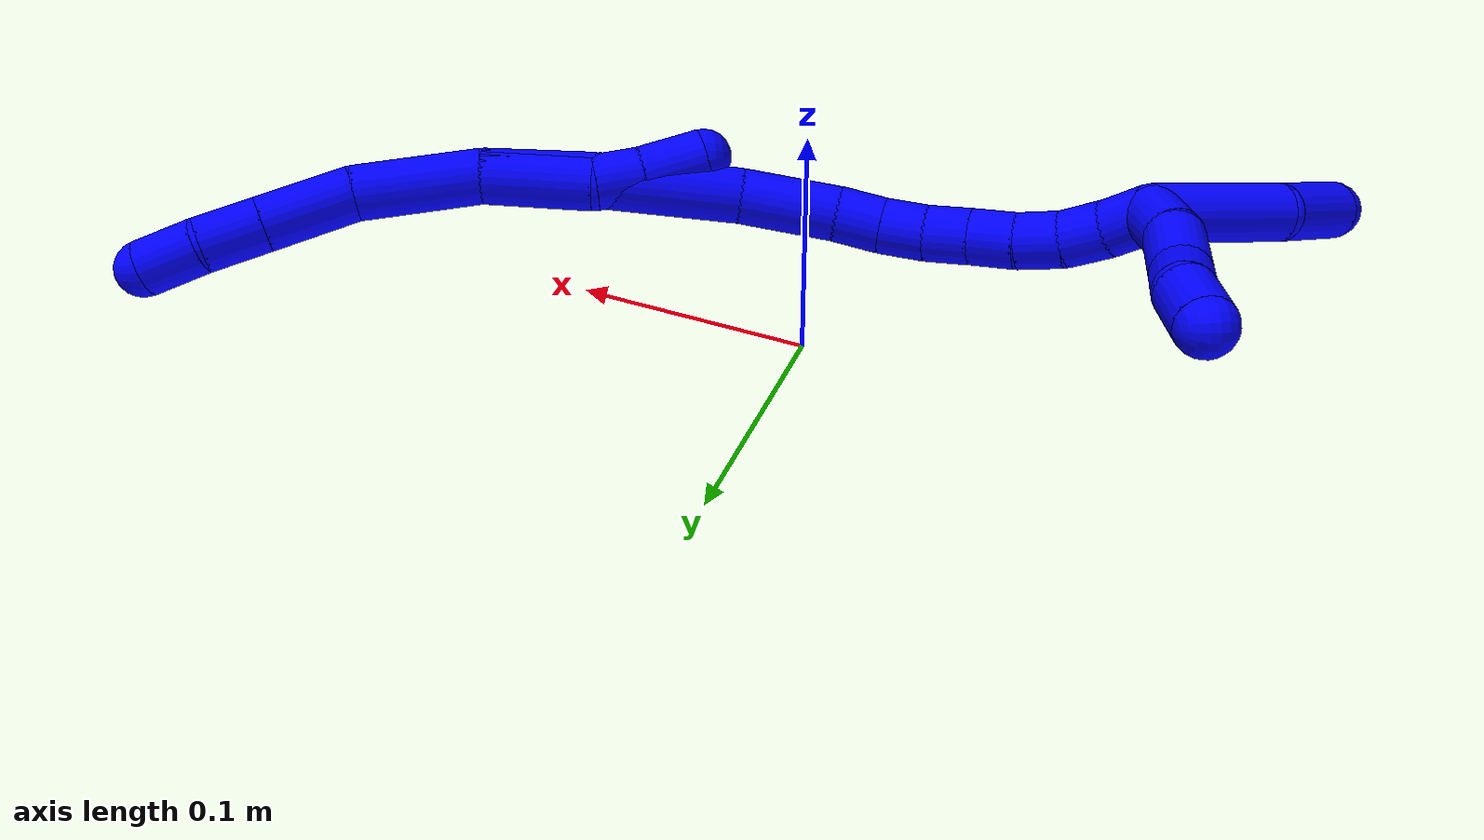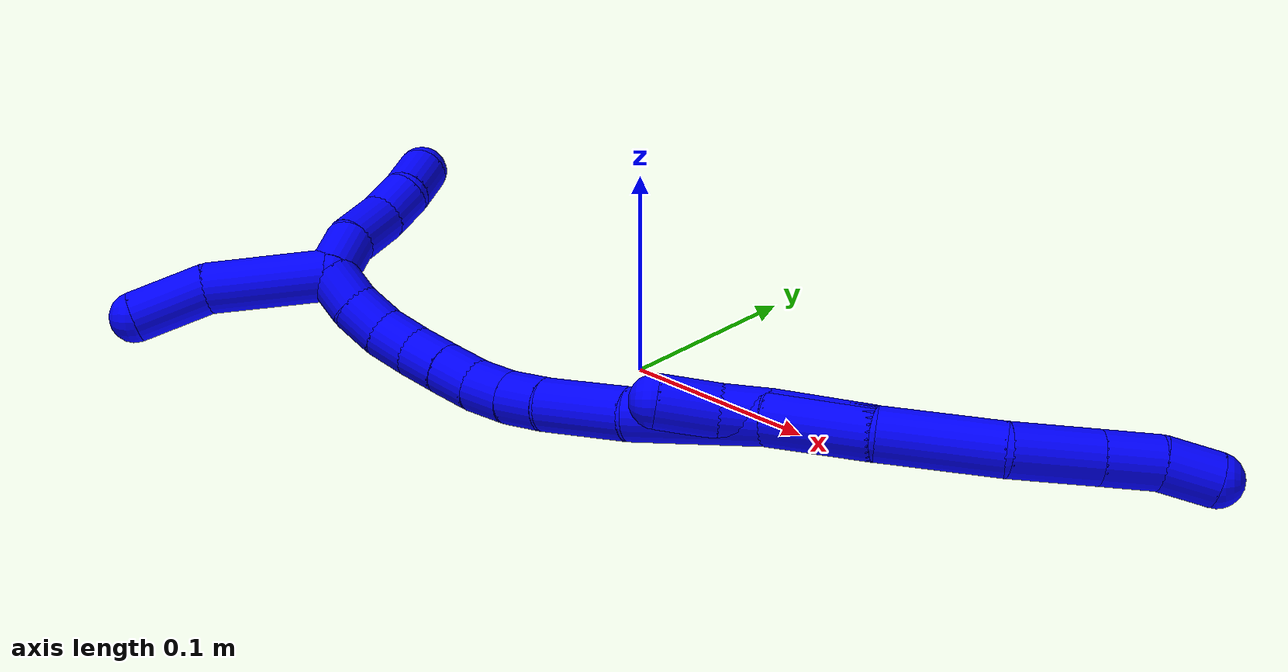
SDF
<sdf version="1.7">
 <world name="default">
  <model name="1">
   <static>0</static>
   <link name="1">
    <collision name="collision-cylinder-e_1_2_8">
     <pose>0.00115 0.002707 0.027988 -0.096409 0.040873 -0.001972</pose>
     <geometry><cylinder><radius>0.0125</radius><length>0.056284</length></cylinder></geometry>
     <surface>
      <friction><ode><mu>1.16</mu><mu2>1.16</mu2><slip1>0</slip1><slip2>0</slip2></ode></friction>
      <contact><ode><kp>1e+06</kp><kd>1</kd><max_vel>0</max_vel><min_depth>0.001</min_depth></ode></contact>
     </surface>
    </collision>
    <visual name="visual-cylinder-e_1_2_8">
     <pose>0.00115 0.002707 0.027988 -0.096409 0.040873 -0.001972</pose>
     <geometry><cylinder><radius>0.0125</radius><length>0.056284</length></cylinder></geometry>
     <material><ambient>0 0 1 1</ambient></material>
    </visual>
    <collision name="collision-cylinder-e_2_8_9">
     <pose>-0.00056 0.010839 0.075466 -0.271496 -0.140444 0.019214</pose>
     <geometry><cylinder><radius>0.0125</radius><length>0.040864</length></cylinder></geometry>
     <surface>
      <friction><ode><mu>1.16</mu><mu2>1.16</mu2><slip1>0</slip1><slip2>0</slip2></ode></friction>
      <contact><ode><kp>1e+06</kp><kd>1</kd><max_vel>0</max_vel><min_depth>0.001</min_depth></ode></contact>
     </surface>
    </collision>
    <visual name="visual-cylinder-e_2_8_9">
     <pose>-0.00056 0.010839 0.075466 -0.271496 -0.140444 0.019214</pose>
     <geometry><cylinder><radius>0.0125</radius><length>0.040864</length></cylinder></geometry>
     <material><ambient>0 0 1 1</ambient></material>
    </visual>
    <collision name="collision-cylinder-e_3_9_10">
     <pose>-0.005263 0.019835 0.107899 -0.26917 -0.136405 0.018498</pose>
     <geometry><cylinder><radius>0.0125</radius><length>0.027106</length></cylinder></geometry>
     <surface>
      <friction><ode><mu>1.16</mu><mu2>1.16</mu2><slip1>0</slip1><slip2>0</slip2></ode></friction>
      <contact><ode><kp>1e+06</kp><kd>1</kd><max_vel>0</max_vel><min_depth>0.001</min_depth></ode></contact>
     </surface>
    </collision>
    <visual name="visual-cylinder-e_3_9_10">
     <pose>-0.005263 0.019835 0.107899 -0.26917 -0.136405 0.018498</pose>
     <geometry><cylinder><radius>0.0125</radius><length>0.027106</length></cylinder></geometry>
     <material><ambient>0 0 1 1</ambient></material>
    </visual>
    <collision name="collision-cylinder-e_4_10_6">
     <pose>-0.00642 0.027875 0.132895 -0.355146 0.05336 -0.009578</pose>
     <geometry><cylinder><radius>0.0125</radius><length>0.025747</length></cylinder></geometry>
     <surface>
      <friction><ode><mu>1.16</mu><mu2>1.16</mu2><slip1>0</slip1><slip2>0</slip2></ode></friction>
      <contact><ode><kp>1e+06</kp><kd>1</kd><max_vel>0</max_vel><min_depth>0.001</min_depth></ode></contact>
     </surface>
    </collision>
    <visual name="visual-cylinder-e_4_10_6">
     <pose>-0.00642 0.027875 0.132895 -0.355146 0.05336 -0.009578</pose>
     <geometry><cylinder><radius>0.0125</radius><length>0.025747</length></cylinder></geometry>
     <material><ambient>0 0 1 1</ambient></material>
    </visual>
    <collision name="collision-cylinder-e_1_2_11">
     <pose>-0.005503 0.001901 -0.02412 -3.06292 -0.223658 2.46745</pose>
     <geometry><cylinder><radius>0.0125</radius><length>0.049626</length></cylinder></geometry>
     <surface>
      <friction><ode><mu>1.16</mu><mu2>1.16</mu2><slip1>0</slip1><slip2>0</slip2></ode></friction>
      <contact><ode><kp>1e+06</kp><kd>1</kd><max_vel>0</max_vel><min_depth>0.001</min_depth></ode></contact>
     </surface>
    </collision>
    <visual name="visual-cylinder-e_1_2_11">
     <pose>-0.005503 0.001901 -0.02412 -3.06292 -0.223658 2.46745</pose>
     <geometry><cylinder><radius>0.0125</radius><length>0.049626</length></cylinder></geometry>
     <material><ambient>0 0 1 1</ambient></material>
    </visual>
    <collision name="collision-cylinder-e_2_11_12">
     <pose>-0.010947 0.002453 -0.058951 3.01622 0.005552 0.088388</pose>
     <geometry><cylinder><radius>0.0125</radius><length>0.021591</length></cylinder></geometry>
     <surface>
      <friction><ode><mu>1.16</mu><mu2>1.16</mu2><slip1>0</slip1><slip2>0</slip2></ode></friction>
      <contact><ode><kp>1e+06</kp><kd>1</kd><max_vel>0</max_vel><min_depth>0.001</min_depth></ode></contact>
     </surface>
    </collision>
    <visual name="visual-cylinder-e_2_11_12">
     <pose>-0.010947 0.002453 -0.058951 3.01622 0.005552 0.088388</pose>
     <geometry><cylinder><radius>0.0125</radius><length>0.021591</length></cylinder></geometry>
     <material><ambient>0 0 1 1</ambient></material>
    </visual>
    <collision name="collision-cylinder-e_3_12_5">
     <pose>-0.010538 -0.002246 -0.083654 2.90664 0.024228 0.204578</pose>
     <geometry><cylinder><radius>0.0125</radius><length>0.028783</length></cylinder></geometry>
     <surface>
      <friction><ode><mu>1.16</mu><mu2>1.16</mu2><slip1>0</slip1><slip2>0</slip2></ode></friction>
      <contact><ode><kp>1e+06</kp><kd>1</kd><max_vel>0</max_vel><min_depth>0.001</min_depth></ode></contact>
     </surface>
    </collision>
    <visual name="visual-cylinder-e_3_12_5">
     <pose>-0.010538 -0.002246 -0.083654 2.90664 0.024228 0.204578</pose>
     <geometry><cylinder><radius>0.0125</radius><length>0.028783</length></cylinder></geometry>
     <material><ambient>0 0 1 1</ambient></material>
    </visual>
    <collision name="collision-cylinder-e_1_2_13">
     <pose>-0.004564 0.001459 -0.024637 -3.08245 -0.182881 2.5175</pose>
     <geometry><cylinder><radius>0.0125</radius><length>0.050196</length></cylinder></geometry>
     <surface>
      <friction><ode><mu>1.16</mu><mu2>1.16</mu2><slip1>0</slip1><slip2>0</slip2></ode></friction>
      <contact><ode><kp>1e+06</kp><kd>1</kd><max_vel>0</max_vel><min_depth>0.001</min_depth></ode></contact>
     </surface>
    </collision>
    <visual name="visual-cylinder-e_1_2_13">
     <pose>-0.004564 0.001459 -0.024637 -3.08245 -0.182881 2.5175</pose>
     <geometry><cylinder><radius>0.0125</radius><length>0.050196</length></cylinder></geometry>
     <material><ambient>0 0 1 1</ambient></material>
    </visual>
    <collision name="collision-cylinder-e_2_13_14">
     <pose>-0.012759 0.007416 -0.081214 -3.00167 -0.11207 1.35007</pose>
     <geometry><cylinder><radius>0.0125</radius><length>0.06492</length></cylinder></geometry>
     <surface>
      <friction><ode><mu>1.16</mu><mu2>1.16</mu2><slip1>0</slip1><slip2>0</slip2></ode></friction>
      <contact><ode><kp>1e+06</kp><kd>1</kd><max_vel>0</max_vel><min_depth>0.001</min_depth></ode></contact>
     </surface>
    </collision>
    <visual name="visual-cylinder-e_2_13_14">
     <pose>-0.012759 0.007416 -0.081214 -3.00167 -0.11207 1.35007</pose>
     <geometry><cylinder><radius>0.0125</radius><length>0.06492</length></cylinder></geometry>
     <material><ambient>0 0 1 1</ambient></material>
    </visual>
    <collision name="collision-cylinder-e_3_14_15">
     <pose>-0.021811 0.016135 -0.133895 -2.94087 -0.250795 1.79351</pose>
     <geometry><cylinder><radius>0.0125</radius><length>0.043696</length></cylinder></geometry>
     <surface>
      <friction><ode><mu>1.16</mu><mu2>1.16</mu2><slip1>0</slip1><slip2>0</slip2></ode></friction>
      <contact><ode><kp>1e+06</kp><kd>1</kd><max_vel>0</max_vel><min_depth>0.001</min_depth></ode></contact>
     </surface>
    </collision>
    <visual name="visual-cylinder-e_3_14_15">
     <pose>-0.021811 0.016135 -0.133895 -2.94087 -0.250795 1.79351</pose>
     <geometry><cylinder><radius>0.0125</radius><length>0.043696</length></cylinder></geometry>
     <material><ambient>0 0 1 1</ambient></material>
    </visual>
    <collision name="collision-cylinder-e_4_15_16">
     <pose>-0.03103 0.022889 -0.164049 -2.87861 -0.371333 1.91462</pose>
     <geometry><cylinder><radius>0.0125</radius><length>0.020927</length></cylinder></geometry>
     <surface>
      <friction><ode><mu>1.16</mu><mu2>1.16</mu2><slip1>0</slip1><slip2>0</slip2></ode></friction>
      <contact><ode><kp>1e+06</kp><kd>1</kd><max_vel>0</max_vel><min_depth>0.001</min_depth></ode></contact>
     </surface>
    </collision>
    <visual name="visual-cylinder-e_4_15_16">
     <pose>-0.03103 0.022889 -0.164049 -2.87861 -0.371333 1.91462</pose>
     <geometry><cylinder><radius>0.0125</radius><length>0.020927</length></cylinder></geometry>
     <material><ambient>0 0 1 1</ambient></material>
    </visual>
    <collision name="collision-cylinder-e_5_16_17">
     <pose>-0.039245 0.026849 -0.182409 -2.98363 -0.453837 2.48112</pose>
     <geometry><cylinder><radius>0.0125</radius><length>0.020155</length></cylinder></geometry>
     <surface>
      <friction><ode><mu>1.16</mu><mu2>1.16</mu2><slip1>0</slip1><slip2>0</slip2></ode></friction>
      <contact><ode><kp>1e+06</kp><kd>1</kd><max_vel>0</max_vel><min_depth>0.001</min_depth></ode></contact>
     </surface>
    </collision>
    <visual name="visual-cylinder-e_5_16_17">
     <pose>-0.039245 0.026849 -0.182409 -2.98363 -0.453837 2.48112</pose>
     <geometry><cylinder><radius>0.0125</radius><length>0.020155</length></cylinder></geometry>
     <material><ambient>0 0 1 1</ambient></material>
    </visual>
    <collision name="collision-cylinder-e_6_17_18">
     <pose>-0.048753 0.028614 -0.199979 -3.10215 -0.532796 2.9973</pose>
     <geometry><cylinder><radius>0.0125</radius><length>0.020042</length></cylinder></geometry>
     <surface>
      <friction><ode><mu>1.16</mu><mu2>1.16</mu2><slip1>0</slip1><slip2>0</slip2></ode></friction>
      <contact><ode><kp>1e+06</kp><kd>1</kd><max_vel>0</max_vel><min_depth>0.001</min_depth></ode></contact>
     </surface>
    </collision>
    <visual name="visual-cylinder-e_6_17_18">
     <pose>-0.048753 0.028614 -0.199979 -3.10215 -0.532796 2.9973</pose>
     <geometry><cylinder><radius>0.0125</radius><length>0.020042</length></cylinder></geometry>
     <material><ambient>0 0 1 1</ambient></material>
    </visual>
    <collision name="collision-cylinder-e_7_18_19">
     <pose>-0.059146 0.029443 -0.21709 -3.08406 -0.557753 2.94129</pose>
     <geometry><cylinder><radius>0.0125</radius><length>0.020038</length></cylinder></geometry>
     <surface>
      <friction><ode><mu>1.16</mu><mu2>1.16</mu2><slip1>0</slip1><slip2>0</slip2></ode></friction>
      <contact><ode><kp>1e+06</kp><kd>1</kd><max_vel>0</max_vel><min_depth>0.001</min_depth></ode></contact>
     </surface>
    </collision>
    <visual name="visual-cylinder-e_7_18_19">
     <pose>-0.059146 0.029443 -0.21709 -3.08406 -0.557753 2.94129</pose>
     <geometry><cylinder><radius>0.0125</radius><length>0.020038</length></cylinder></geometry>
     <material><ambient>0 0 1 1</ambient></material>
    </visual>
    <collision name="collision-cylinder-e_8_19_20">
     <pose>-0.069553 0.029109 -0.234144 3.04583 -0.535311 -2.79562</pose>
     <geometry><cylinder><radius>0.0125</radius><length>0.020013</length></cylinder></geometry>
     <surface>
      <friction><ode><mu>1.16</mu><mu2>1.16</mu2><slip1>0</slip1><slip2>0</slip2></ode></friction>
      <contact><ode><kp>1e+06</kp><kd>1</kd><max_vel>0</max_vel><min_depth>0.001</min_depth></ode></contact>
     </surface>
    </collision>
    <visual name="visual-cylinder-e_8_19_20">
     <pose>-0.069553 0.029109 -0.234144 3.04583 -0.535311 -2.79562</pose>
     <geometry><cylinder><radius>0.0125</radius><length>0.020013</length></cylinder></geometry>
     <material><ambient>0 0 1 1</ambient></material>
    </visual>
    <collision name="collision-cylinder-e_9_20_21">
     <pose>-0.080158 0.025368 -0.250544 2.78498 -0.581945 -2.05811</pose>
     <geometry><cylinder><radius>0.0125</radius><length>0.020012</length></cylinder></geometry>
     <surface>
      <friction><ode><mu>1.16</mu><mu2>1.16</mu2><slip1>0</slip1><slip2>0</slip2></ode></friction>
      <contact><ode><kp>1e+06</kp><kd>1</kd><max_vel>0</max_vel><min_depth>0.001</min_depth></ode></contact>
     </surface>
    </collision>
    <visual name="visual-cylinder-e_9_20_21">
     <pose>-0.080158 0.025368 -0.250544 2.78498 -0.581945 -2.05811</pose>
     <geometry><cylinder><radius>0.0125</radius><length>0.020012</length></cylinder></geometry>
     <material><ambient>0 0 1 1</ambient></material>
    </visual>
    <collision name="collision-cylinder-e_10_21_1">
     <pose>-0.092122 0.018463 -0.264883 2.59181 -0.702885 -1.83026</pose>
     <geometry><cylinder><radius>0.0125</radius><length>0.020001</length></cylinder></geometry>
     <surface>
      <friction><ode><mu>1.16</mu><mu2>1.16</mu2><slip1>0</slip1><slip2>0</slip2></ode></friction>
      <contact><ode><kp>1e+06</kp><kd>1</kd><max_vel>0</max_vel><min_depth>0.001</min_depth></ode></contact>
     </surface>
    </collision>
    <visual name="visual-cylinder-e_10_21_1">
     <pose>-0.092122 0.018463 -0.264883 2.59181 -0.702885 -1.83026</pose>
     <geometry><cylinder><radius>0.0125</radius><length>0.020001</length></cylinder></geometry>
     <material><ambient>0 0 1 1</ambient></material>
    </visual>
    <collision name="collision-cylinder-e_1_1_22">
     <pose>-0.095126 0.016364 -0.302194 -3.08037 0.111652 -2.13908</pose>
     <geometry><cylinder><radius>0.0125</radius><length>0.062113</length></cylinder></geometry>
     <surface>
      <friction><ode><mu>1.16</mu><mu2>1.16</mu2><slip1>0</slip1><slip2>0</slip2></ode></friction>
      <contact><ode><kp>1e+06</kp><kd>1</kd><max_vel>0</max_vel><min_depth>0.001</min_depth></ode></contact>
     </surface>
    </collision>
    <visual name="visual-cylinder-e_1_1_22">
     <pose>-0.095126 0.016364 -0.302194 -3.08037 0.111652 -2.13908</pose>
     <geometry><cylinder><radius>0.0125</radius><length>0.062113</length></cylinder></geometry>
     <material><ambient>0 0 1 1</ambient></material>
    </visual>
    <collision name="collision-cylinder-e_2_22_4">
     <pose>-0.083394 0.019925 -0.34996 -3.04328 0.451867 -2.71991</pose>
     <geometry><cylinder><radius>0.0125</radius><length>0.037887</length></cylinder></geometry>
     <surface>
      <friction><ode><mu>1.16</mu><mu2>1.16</mu2><slip1>0</slip1><slip2>0</slip2></ode></friction>
      <contact><ode><kp>1e+06</kp><kd>1</kd><max_vel>0</max_vel><min_depth>0.001</min_depth></ode></contact>
     </surface>
    </collision>
    <visual name="visual-cylinder-e_2_22_4">
     <pose>-0.083394 0.019925 -0.34996 -3.04328 0.451867 -2.71991</pose>
     <geometry><cylinder><radius>0.0125</radius><length>0.037887</length></cylinder></geometry>
     <material><ambient>0 0 1 1</ambient></material>
    </visual>
    <collision name="collision-cylinder-e_1_1_23">
     <pose>-0.111592 0.017142 -0.270277 -1.17552 -1.35226 0.981841</pose>
     <geometry><cylinder><radius>0.0125</radius><length>0.026645</length></cylinder></geometry>
     <surface>
      <friction><ode><mu>1.16</mu><mu2>1.16</mu2><slip1>0</slip1><slip2>0</slip2></ode></friction>
      <contact><ode><kp>1e+06</kp><kd>1</kd><max_vel>0</max_vel><min_depth>0.001</min_depth></ode></contact>
     </surface>
    </collision>
    <visual name="visual-cylinder-e_1_1_23">
     <pose>-0.111592 0.017142 -0.270277 -1.17552 -1.35226 0.981841</pose>
     <geometry><cylinder><radius>0.0125</radius><length>0.026645</length></cylinder></geometry>
     <material><ambient>0 0 1 1</ambient></material>
    </visual>
    <collision name="collision-cylinder-e_2_23_24">
     <pose>-0.137223 0.024593 -0.264865 -0.838871 -1.0995 0.533437</pose>
     <geometry><cylinder><radius>0.0125</radius><length>0.028341</length></cylinder></geometry>
     <surface>
      <friction><ode><mu>1.16</mu><mu2>1.16</mu2><slip1>0</slip1><slip2>0</slip2></ode></friction>
      <contact><ode><kp>1e+06</kp><kd>1</kd><max_vel>0</max_vel><min_depth>0.001</min_depth></ode></contact>
     </surface>
    </collision>
    <visual name="visual-cylinder-e_2_23_24">
     <pose>-0.137223 0.024593 -0.264865 -0.838871 -1.0995 0.533437</pose>
     <geometry><cylinder><radius>0.0125</radius><length>0.028341</length></cylinder></geometry>
     <material><ambient>0 0 1 1</ambient></material>
    </visual>
    <collision name="collision-cylinder-e_3_24_25">
     <pose>-0.159421 0.030643 -0.25667 -0.313608 -1.16657 0.207901</pose>
     <geometry><cylinder><radius>0.0125</radius><length>0.020822</length></cylinder></geometry>
     <surface>
      <friction><ode><mu>1.16</mu><mu2>1.16</mu2><slip1>0</slip1><slip2>0</slip2></ode></friction>
      <contact><ode><kp>1e+06</kp><kd>1</kd><max_vel>0</max_vel><min_depth>0.001</min_depth></ode></contact>
     </surface>
    </collision>
    <visual name="visual-cylinder-e_3_24_25">
     <pose>-0.159421 0.030643 -0.25667 -0.313608 -1.16657 0.207901</pose>
     <geometry><cylinder><radius>0.0125</radius><length>0.020822</length></cylinder></geometry>
     <material><ambient>0 0 1 1</ambient></material>
    </visual>
    <collision name="collision-cylinder-e_4_25_3">
     <pose>-0.180457 0.035501 -0.251371 -1.19849 -1.24603 0.912413</pose>
     <geometry><cylinder><radius>0.0125</radius><length>0.024192</length></cylinder></geometry>
     <surface>
      <friction><ode><mu>1.16</mu><mu2>1.16</mu2><slip1>0</slip1><slip2>0</slip2></ode></friction>
      <contact><ode><kp>1e+06</kp><kd>1</kd><max_vel>0</max_vel><min_depth>0.001</min_depth></ode></contact>
     </surface>
    </collision>
    <visual name="visual-cylinder-e_4_25_3">
     <pose>-0.180457 0.035501 -0.251371 -1.19849 -1.24603 0.912413</pose>
     <geometry><cylinder><radius>0.0125</radius><length>0.024192</length></cylinder></geometry>
     <material><ambient>0 0 1 1</ambient></material>
    </visual>
    <collision name="collision-sphere-3">
     <pose>-0.19192 0.039096 -0.249967 0 -0 0</pose>
     <geometry><sphere><radius>0.0125</radius></sphere></geometry>
     <surface>
      <friction><ode><mu>1.16</mu><mu2>1.16</mu2><slip1>0</slip1><slip2>0</slip2></ode></friction>
      <contact><ode><kp>1e+06</kp><kd>1</kd><max_vel>0</max_vel><min_depth>0.001</min_depth></ode></contact>
     </surface>
    </collision>
    <visual name="visual-sphere-3">
     <pose>-0.19192 0.039096 -0.249967 0 -0 0</pose>
     <geometry><sphere><radius>0.0125</radius></sphere></geometry>
     <material><ambient>0 0 1 1</ambient></material>
    </visual>
    <collision name="collision-sphere-25">
     <pose>-0.168993 0.031906 -0.252775 0 -0 0</pose>
     <geometry><sphere><radius>0.0125</radius></sphere></geometry>
     <surface>
      <friction><ode><mu>1.16</mu><mu2>1.16</mu2><slip1>0</slip1><slip2>0</slip2></ode></friction>
      <contact><ode><kp>1e+06</kp><kd>1</kd><max_vel>0</max_vel><min_depth>0.001</min_depth></ode></contact>
     </surface>
    </collision>
    <visual name="visual-sphere-25">
     <pose>-0.168993 0.031906 -0.252775 0 -0 0</pose>
     <geometry><sphere><radius>0.0125</radius></sphere></geometry>
     <material><ambient>0 0 1 1</ambient></material>
    </visual>
    <collision name="collision-sphere-24">
     <pose>-0.149849 0.029379 -0.260565 0 -0 0</pose>
     <geometry><sphere><radius>0.0125</radius></sphere></geometry>
     <surface>
      <friction><ode><mu>1.16</mu><mu2>1.16</mu2><slip1>0</slip1><slip2>0</slip2></ode></friction>
      <contact><ode><kp>1e+06</kp><kd>1</kd><max_vel>0</max_vel><min_depth>0.001</min_depth></ode></contact>
     </surface>
    </collision>
    <visual name="visual-sphere-24">
     <pose>-0.149849 0.029379 -0.260565 0 -0 0</pose>
     <geometry><sphere><radius>0.0125</radius></sphere></geometry>
     <material><ambient>0 0 1 1</ambient></material>
    </visual>
    <collision name="collision-sphere-23">
     <pose>-0.124598 0.019807 -0.269165 0 -0 0</pose>
     <geometry><sphere><radius>0.0125</radius></sphere></geometry>
     <surface>
      <friction><ode><mu>1.16</mu><mu2>1.16</mu2><slip1>0</slip1><slip2>0</slip2></ode></friction>
      <contact><ode><kp>1e+06</kp><kd>1</kd><max_vel>0</max_vel><min_depth>0.001</min_depth></ode></contact>
     </surface>
    </collision>
    <visual name="visual-sphere-23">
     <pose>-0.124598 0.019807 -0.269165 0 -0 0</pose>
     <geometry><sphere><radius>0.0125</radius></sphere></geometry>
     <material><ambient>0 0 1 1</ambient></material>
    </visual>
    <collision name="collision-sphere-4">
     <pose>-0.075123 0.021598 -0.36692 0 -0 0</pose>
     <geometry><sphere><radius>0.0125</radius></sphere></geometry>
     <surface>
      <friction><ode><mu>1.16</mu><mu2>1.16</mu2><slip1>0</slip1><slip2>0</slip2></ode></friction>
      <contact><ode><kp>1e+06</kp><kd>1</kd><max_vel>0</max_vel><min_depth>0.001</min_depth></ode></contact>
     </surface>
    </collision>
    <visual name="visual-sphere-4">
     <pose>-0.075123 0.021598 -0.36692 0 -0 0</pose>
     <geometry><sphere><radius>0.0125</radius></sphere></geometry>
     <material><ambient>0 0 1 1</ambient></material>
    </visual>
    <collision name="collision-sphere-22">
     <pose>-0.091666 0.018253 -0.333 0 -0 0</pose>
     <geometry><sphere><radius>0.0125</radius></sphere></geometry>
     <surface>
      <friction><ode><mu>1.16</mu><mu2>1.16</mu2><slip1>0</slip1><slip2>0</slip2></ode></friction>
      <contact><ode><kp>1e+06</kp><kd>1</kd><max_vel>0</max_vel><min_depth>0.001</min_depth></ode></contact>
     </surface>
    </collision>
    <visual name="visual-sphere-22">
     <pose>-0.091666 0.018253 -0.333 0 -0 0</pose>
     <geometry><sphere><radius>0.0125</radius></sphere></geometry>
     <material><ambient>0 0 1 1</ambient></material>
    </visual>
    <collision name="collision-sphere-1">
     <pose>-0.098587 0.014476 -0.271389 0 -0 0</pose>
     <geometry><sphere><radius>0.0125</radius></sphere></geometry>
     <surface>
      <friction><ode><mu>1.16</mu><mu2>1.16</mu2><slip1>0</slip1><slip2>0</slip2></ode></friction>
      <contact><ode><kp>1e+06</kp><kd>1</kd><max_vel>0</max_vel><min_depth>0.001</min_depth></ode></contact>
     </surface>
    </collision>
    <visual name="visual-sphere-1">
     <pose>-0.098587 0.014476 -0.271389 0 -0 0</pose>
     <geometry><sphere><radius>0.0125</radius></sphere></geometry>
     <material><ambient>0 0 1 1</ambient></material>
    </visual>
    <collision name="collision-sphere-21">
     <pose>-0.085657 0.02245 -0.258377 0 -0 0</pose>
     <geometry><sphere><radius>0.0125</radius></sphere></geometry>
     <surface>
      <friction><ode><mu>1.16</mu><mu2>1.16</mu2><slip1>0</slip1><slip2>0</slip2></ode></friction>
      <contact><ode><kp>1e+06</kp><kd>1</kd><max_vel>0</max_vel><min_depth>0.001</min_depth></ode></contact>
     </surface>
    </collision>
    <visual name="visual-sphere-21">
     <pose>-0.085657 0.02245 -0.258377 0 -0 0</pose>
     <geometry><sphere><radius>0.0125</radius></sphere></geometry>
     <material><ambient>0 0 1 1</ambient></material>
    </visual>
    <collision name="collision-sphere-11">
     <pose>-0.011007 0.003803 -0.048241 0 -0 0</pose>
     <geometry><sphere><radius>0.0125</radius></sphere></geometry>
     <surface>
      <friction><ode><mu>1.16</mu><mu2>1.16</mu2><slip1>0</slip1><slip2>0</slip2></ode></friction>
      <contact><ode><kp>1e+06</kp><kd>1</kd><max_vel>0</max_vel><min_depth>0.001</min_depth></ode></contact>
     </surface>
    </collision>
    <visual name="visual-sphere-11">
     <pose>-0.011007 0.003803 -0.048241 0 -0 0</pose>
     <geometry><sphere><radius>0.0125</radius></sphere></geometry>
     <material><ambient>0 0 1 1</ambient></material>
    </visual>
    <collision name="collision-sphere-6">
     <pose>-0.005733 0.032345 0.144948 0 -0 0</pose>
     <geometry><sphere><radius>0.0125</radius></sphere></geometry>
     <surface>
      <friction><ode><mu>1.16</mu><mu2>1.16</mu2><slip1>0</slip1><slip2>0</slip2></ode></friction>
      <contact><ode><kp>1e+06</kp><kd>1</kd><max_vel>0</max_vel><min_depth>0.001</min_depth></ode></contact>
     </surface>
    </collision>
    <visual name="visual-sphere-6">
     <pose>-0.005733 0.032345 0.144948 0 -0 0</pose>
     <geometry><sphere><radius>0.0125</radius></sphere></geometry>
     <material><ambient>0 0 1 1</ambient></material>
    </visual>
    <collision name="collision-sphere-10">
     <pose>-0.007106 0.023405 0.120842 0 -0 0</pose>
     <geometry><sphere><radius>0.0125</radius></sphere></geometry>
     <surface>
      <friction><ode><mu>1.16</mu><mu2>1.16</mu2><slip1>0</slip1><slip2>0</slip2></ode></friction>
      <contact><ode><kp>1e+06</kp><kd>1</kd><max_vel>0</max_vel><min_depth>0.001</min_depth></ode></contact>
     </surface>
    </collision>
    <visual name="visual-sphere-10">
     <pose>-0.007106 0.023405 0.120842 0 -0 0</pose>
     <geometry><sphere><radius>0.0125</radius></sphere></geometry>
     <material><ambient>0 0 1 1</ambient></material>
    </visual>
    <collision name="collision-sphere-9">
     <pose>-0.00342 0.016264 0.094955 0 -0 0</pose>
     <geometry><sphere><radius>0.0125</radius></sphere></geometry>
     <surface>
      <friction><ode><mu>1.16</mu><mu2>1.16</mu2><slip1>0</slip1><slip2>0</slip2></ode></friction>
      <contact><ode><kp>1e+06</kp><kd>1</kd><max_vel>0</max_vel><min_depth>0.001</min_depth></ode></contact>
     </surface>
    </collision>
    <visual name="visual-sphere-9">
     <pose>-0.00342 0.016264 0.094955 0 -0 0</pose>
     <geometry><sphere><radius>0.0125</radius></sphere></geometry>
     <material><ambient>0 0 1 1</ambient></material>
    </visual>
    <collision name="collision-sphere-2">
     <geometry><sphere><radius>0.0125</radius></sphere></geometry>
     <surface>
      <friction><ode><mu>1.16</mu><mu2>1.16</mu2><slip1>0</slip1><slip2>0</slip2></ode></friction>
      <contact><ode><kp>1e+06</kp><kd>1</kd><max_vel>0</max_vel><min_depth>0.001</min_depth></ode></contact>
     </surface>
    </collision>
    <visual name="visual-sphere-2">
     <geometry><sphere><radius>0.0125</radius></sphere></geometry>
     <material><ambient>0 0 1 1</ambient></material>
    </visual>
    <collision name="collision-sphere-19">
     <pose>-0.064449 0.029932 -0.225577 0 -0 0</pose>
     <geometry><sphere><radius>0.0125</radius></sphere></geometry>
     <surface>
      <friction><ode><mu>1.16</mu><mu2>1.16</mu2><slip1>0</slip1><slip2>0</slip2></ode></friction>
      <contact><ode><kp>1e+06</kp><kd>1</kd><max_vel>0</max_vel><min_depth>0.001</min_depth></ode></contact>
     </surface>
    </collision>
    <visual name="visual-sphere-19">
     <pose>-0.064449 0.029932 -0.225577 0 -0 0</pose>
     <geometry><sphere><radius>0.0125</radius></sphere></geometry>
     <material><ambient>0 0 1 1</ambient></material>
    </visual>
    <collision name="collision-sphere-8">
     <pose>0.0023 0.005413 0.055976 0 -0 0</pose>
     <geometry><sphere><radius>0.0125</radius></sphere></geometry>
     <surface>
      <friction><ode><mu>1.16</mu><mu2>1.16</mu2><slip1>0</slip1><slip2>0</slip2></ode></friction>
      <contact><ode><kp>1e+06</kp><kd>1</kd><max_vel>0</max_vel><min_depth>0.001</min_depth></ode></contact>
     </surface>
    </collision>
    <visual name="visual-sphere-8">
     <pose>0.0023 0.005413 0.055976 0 -0 0</pose>
     <geometry><sphere><radius>0.0125</radius></sphere></geometry>
     <material><ambient>0 0 1 1</ambient></material>
    </visual>
    <collision name="collision-sphere-12">
     <pose>-0.010887 0.001103 -0.069662 0 -0 0</pose>
     <geometry><sphere><radius>0.0125</radius></sphere></geometry>
     <surface>
      <friction><ode><mu>1.16</mu><mu2>1.16</mu2><slip1>0</slip1><slip2>0</slip2></ode></friction>
      <contact><ode><kp>1e+06</kp><kd>1</kd><max_vel>0</max_vel><min_depth>0.001</min_depth></ode></contact>
     </surface>
    </collision>
    <visual name="visual-sphere-12">
     <pose>-0.010887 0.001103 -0.069662 0 -0 0</pose>
     <geometry><sphere><radius>0.0125</radius></sphere></geometry>
     <material><ambient>0 0 1 1</ambient></material>
    </visual>
    <collision name="collision-sphere-5">
     <pose>-0.01019 -0.005596 -0.097645 0 -0 0</pose>
     <geometry><sphere><radius>0.0125</radius></sphere></geometry>
     <surface>
      <friction><ode><mu>1.16</mu><mu2>1.16</mu2><slip1>0</slip1><slip2>0</slip2></ode></friction>
      <contact><ode><kp>1e+06</kp><kd>1</kd><max_vel>0</max_vel><min_depth>0.001</min_depth></ode></contact>
     </surface>
    </collision>
    <visual name="visual-sphere-5">
     <pose>-0.01019 -0.005596 -0.097645 0 -0 0</pose>
     <geometry><sphere><radius>0.0125</radius></sphere></geometry>
     <material><ambient>0 0 1 1</ambient></material>
    </visual>
    <collision name="collision-sphere-13">
     <pose>-0.009129 0.002918 -0.049273 0 -0 0</pose>
     <geometry><sphere><radius>0.0125</radius></sphere></geometry>
     <surface>
      <friction><ode><mu>1.16</mu><mu2>1.16</mu2><slip1>0</slip1><slip2>0</slip2></ode></friction>
      <contact><ode><kp>1e+06</kp><kd>1</kd><max_vel>0</max_vel><min_depth>0.001</min_depth></ode></contact>
     </surface>
    </collision>
    <visual name="visual-sphere-13">
     <pose>-0.009129 0.002918 -0.049273 0 -0 0</pose>
     <geometry><sphere><radius>0.0125</radius></sphere></geometry>
     <material><ambient>0 0 1 1</ambient></material>
    </visual>
    <collision name="collision-sphere-14">
     <pose>-0.016389 0.011915 -0.113155 0 -0 0</pose>
     <geometry><sphere><radius>0.0125</radius></sphere></geometry>
     <surface>
      <friction><ode><mu>1.16</mu><mu2>1.16</mu2><slip1>0</slip1><slip2>0</slip2></ode></friction>
      <contact><ode><kp>1e+06</kp><kd>1</kd><max_vel>0</max_vel><min_depth>0.001</min_depth></ode></contact>
     </surface>
    </collision>
    <visual name="visual-sphere-14">
     <pose>-0.016389 0.011915 -0.113155 0 -0 0</pose>
     <geometry><sphere><radius>0.0125</radius></sphere></geometry>
     <material><ambient>0 0 1 1</ambient></material>
    </visual>
    <collision name="collision-sphere-15">
     <pose>-0.027233 0.020354 -0.154634 0 -0 0</pose>
     <geometry><sphere><radius>0.0125</radius></sphere></geometry>
     <surface>
      <friction><ode><mu>1.16</mu><mu2>1.16</mu2><slip1>0</slip1><slip2>0</slip2></ode></friction>
      <contact><ode><kp>1e+06</kp><kd>1</kd><max_vel>0</max_vel><min_depth>0.001</min_depth></ode></contact>
     </surface>
    </collision>
    <visual name="visual-sphere-15">
     <pose>-0.027233 0.020354 -0.154634 0 -0 0</pose>
     <geometry><sphere><radius>0.0125</radius></sphere></geometry>
     <material><ambient>0 0 1 1</ambient></material>
    </visual>
    <collision name="collision-sphere-16">
     <pose>-0.034827 0.025424 -0.173464 0 -0 0</pose>
     <geometry><sphere><radius>0.0125</radius></sphere></geometry>
     <surface>
      <friction><ode><mu>1.16</mu><mu2>1.16</mu2><slip1>0</slip1><slip2>0</slip2></ode></friction>
      <contact><ode><kp>1e+06</kp><kd>1</kd><max_vel>0</max_vel><min_depth>0.001</min_depth></ode></contact>
     </surface>
    </collision>
    <visual name="visual-sphere-16">
     <pose>-0.034827 0.025424 -0.173464 0 -0 0</pose>
     <geometry><sphere><radius>0.0125</radius></sphere></geometry>
     <material><ambient>0 0 1 1</ambient></material>
    </visual>
    <collision name="collision-sphere-17">
     <pose>-0.043663 0.028273 -0.191353 0 -0 0</pose>
     <geometry><sphere><radius>0.0125</radius></sphere></geometry>
     <surface>
      <friction><ode><mu>1.16</mu><mu2>1.16</mu2><slip1>0</slip1><slip2>0</slip2></ode></friction>
      <contact><ode><kp>1e+06</kp><kd>1</kd><max_vel>0</max_vel><min_depth>0.001</min_depth></ode></contact>
     </surface>
    </collision>
    <visual name="visual-sphere-17">
     <pose>-0.043663 0.028273 -0.191353 0 -0 0</pose>
     <geometry><sphere><radius>0.0125</radius></sphere></geometry>
     <material><ambient>0 0 1 1</ambient></material>
    </visual>
    <collision name="collision-sphere-18">
     <pose>-0.053843 0.028954 -0.208604 0 -0 0</pose>
     <geometry><sphere><radius>0.0125</radius></sphere></geometry>
     <surface>
      <friction><ode><mu>1.16</mu><mu2>1.16</mu2><slip1>0</slip1><slip2>0</slip2></ode></friction>
      <contact><ode><kp>1e+06</kp><kd>1</kd><max_vel>0</max_vel><min_depth>0.001</min_depth></ode></contact>
     </surface>
    </collision>
    <visual name="visual-sphere-18">
     <pose>-0.053843 0.028954 -0.208604 0 -0 0</pose>
     <geometry><sphere><radius>0.0125</radius></sphere></geometry>
     <material><ambient>0 0 1 1</ambient></material>
    </visual>
    <collision name="collision-sphere-20">
     <pose>-0.074658 0.028286 -0.242711 0 -0 0</pose>
     <geometry><sphere><radius>0.0125</radius></sphere></geometry>
     <surface>
      <friction><ode><mu>1.16</mu><mu2>1.16</mu2><slip1>0</slip1><slip2>0</slip2></ode></friction>
      <contact><ode><kp>1e+06</kp><kd>1</kd><max_vel>0</max_vel><min_depth>0.001</min_depth></ode></contact>
     </surface>
    </collision>
    <visual name="visual-sphere-20">
     <pose>-0.074658 0.028286 -0.242711 0 -0 0</pose>
     <geometry><sphere><radius>0.0125</radius></sphere></geometry>
     <material><ambient>0 0 1 1</ambient></material>
    </visual>
    <inertial>
     <pose>-0.046862 0.015011 -0.12648 0 -0 0</pose>
     <mass>0.75</mass>
     <inertia><ixx>1.3e-05</ixx><ixy>0</ixy><ixz>0</ixz><iyy>0.00011</iyy><iyz>0</iyz><izz>-1.9e-05</izz></inertia>
    </inertial>
   </link>
   <pose>0.160496 -0.02226 0.030389 -1.5052 0.429595 -0.975627</pose>
  </model>
 </world>
</sdf>
